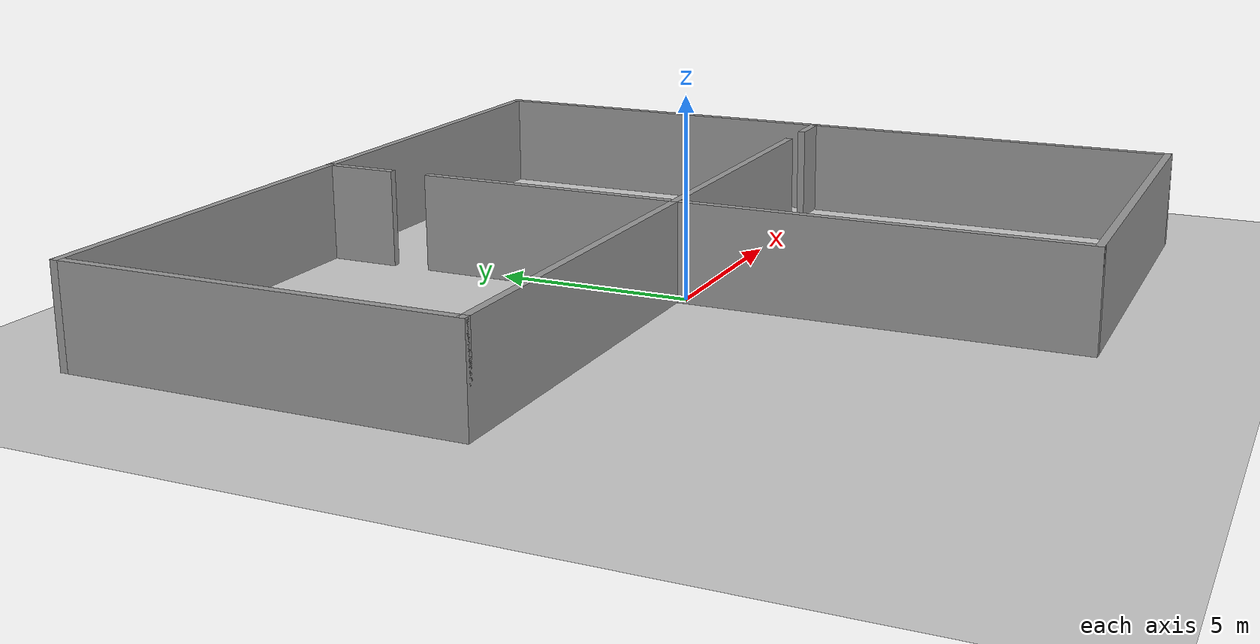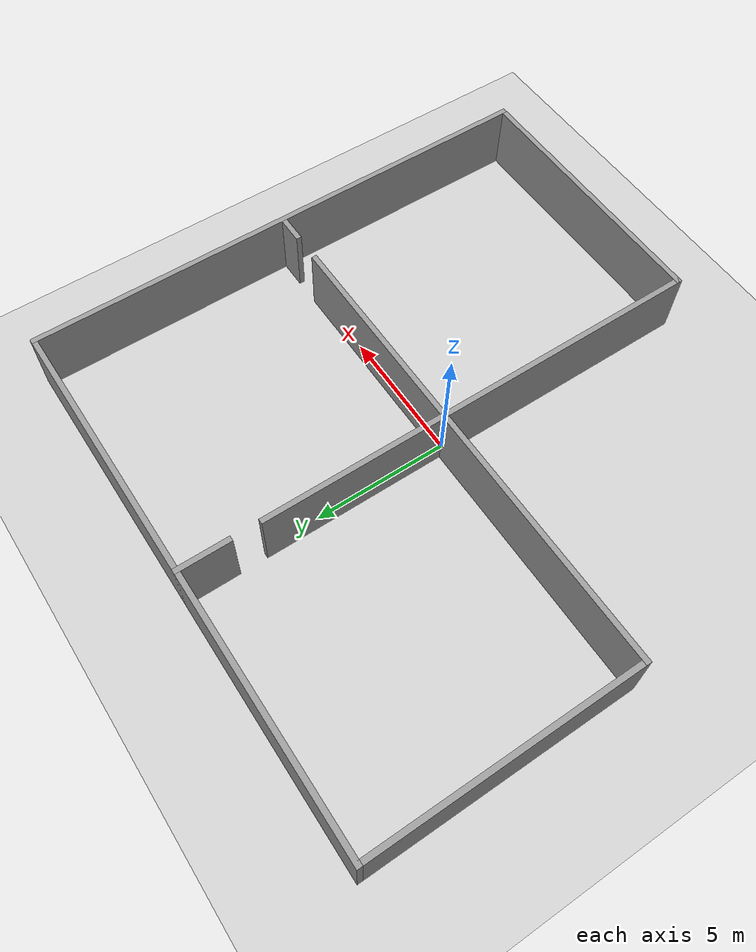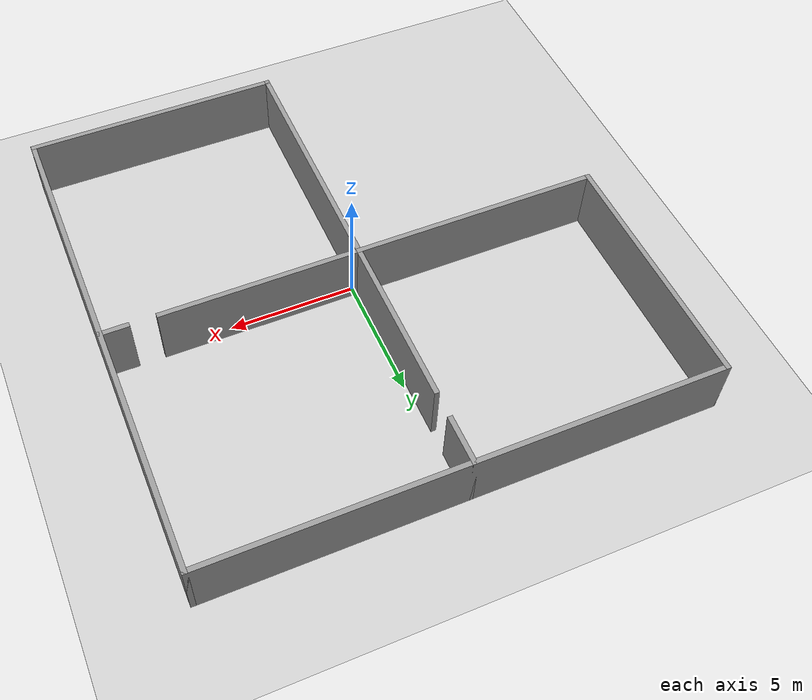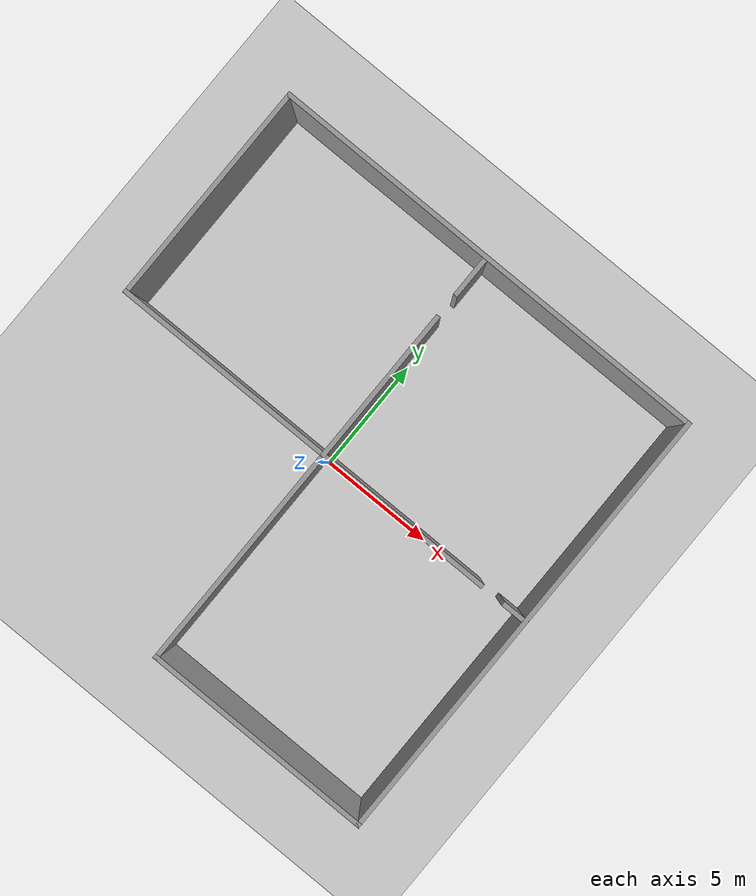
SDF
<sdf version="1.4">
 <world name="default">
  <light name="sun" type="directional">
   <pose>0 0 10 0 -0 0</pose>
   <diffuse>0.8 0.8 0.8 1</diffuse>
   <specular>0.2 0.2 0.2 1</specular>
   <attenuation>
    <range>1000</range>
    <constant>0.9</constant>
    <linear>0.01</linear>
    <quadratic>0.001</quadratic>
   </attenuation>
   <direction>-0.5 0.1 -0.9</direction>
  </light>
  <model name="ground_plane">
   <static>1</static>
   <link name="link">
    <collision name="collision">
     <geometry><plane><normal>0 0 1</normal><size>100 100</size></plane></geometry>
     <surface><friction><ode><mu>100</mu><mu2>50</mu2></ode></friction></surface>
    </collision>
    <visual name="visual">
     <cast_shadows>0</cast_shadows>
     <geometry><plane><normal>0 0 1</normal><size>100 100</size></plane></geometry>
     <material>
      <script><uri>file://media/materials/scripts/gazebo.material</uri><name>Gazebo/Grey</name></script>
     </material>
    </visual>
    <velocity_decay><linear>0</linear><angular>0</angular></velocity_decay>
   </link>
  </model>
  <physics type="ode">
   <max_step_size>0.001</max_step_size>
   <real_time_factor>1</real_time_factor>
   <real_time_update_rate>1000</real_time_update_rate>
   <gravity>0 0 -9.8</gravity>
  </physics>
  <scene><ambient>0.4 0.4 0.4 1</ambient><background>0.7 0.7 0.7 1</background><shadows>1</shadows></scene>
  <spherical_coordinates>
   <surface_model>EARTH_WGS84</surface_model>
   <latitude_deg>0</latitude_deg>
   <longitude_deg>0</longitude_deg>
   <elevation>0</elevation>
   <heading_deg>0</heading_deg>
  </spherical_coordinates>
  <model name="lshape">
   <link name="Wall_0">
    <collision name="Wall_0_Collision">
     <geometry><box><size>20 0.2 2.5</size></box></geometry>
     <pose>0 0 1.25 0 -0 0</pose>
    </collision>
    <visual name="Wall_0_Visual">
     <pose>0 0 1.25 0 -0 0</pose>
     <geometry><box><size>20 0.2 2.5</size></box></geometry>
     <material>
      <script><uri>file://media/materials/scripts/gazebo.material</uri><name>Gazebo/Grey</name></script>
     </material>
    </visual>
    <velocity_decay><linear>0</linear><angular>0</angular></velocity_decay>
    <pose>-0.1 10 0 0 -0 0</pose>
   </link>
   <link name="Wall_10">
    <collision name="Wall_10_Collision">
     <geometry><box><size>10.2 0.2 2.5</size></box></geometry>
     <pose>0 0 1.25 0 -0 0</pose>
    </collision>
    <visual name="Wall_10_Visual">
     <pose>0 0 1.25 0 -0 0</pose>
     <geometry><box><size>10.2 0.2 2.5</size></box></geometry>
     <material>
      <script><uri>file://media/materials/scripts/gazebo.material</uri><name>Gazebo/Grey</name></script>
     </material>
    </visual>
    <velocity_decay><linear>0</linear><angular>0</angular></velocity_decay>
    <pose>4.8 -9.8 0 0 -0 0</pose>
   </link>
   <link name="Wall_12">
    <collision name="Wall_12_Collision">
     <geometry><box><size>7 0.2 2.5</size></box></geometry>
     <pose>0 0 1.25 0 -0 0</pose>
    </collision>
    <visual name="Wall_12_Visual">
     <pose>0 0 1.25 0 -0 0</pose>
     <geometry><box><size>7 0.2 2.5</size></box></geometry>
     <material>
      <script><uri>file://media/materials/scripts/gazebo.material</uri><name>Gazebo/Grey</name></script>
     </material>
    </visual>
    <velocity_decay><linear>0</linear><angular>0</angular></velocity_decay>
    <pose>-0.2 3.6 0 0 -0 1.5708</pose>
   </link>
   <link name="Wall_14">
    <collision name="Wall_14_Collision">
     <geometry><box><size>2 0.2 2.5</size></box></geometry>
     <pose>0 0 1.25 0 -0 0</pose>
    </collision>
    <visual name="Wall_14_Visual">
     <pose>0 0 1.25 0 -0 0</pose>
     <geometry><box><size>2 0.2 2.5</size></box></geometry>
     <material>
      <script><uri>file://media/materials/scripts/gazebo.material</uri><name>Gazebo/Grey</name></script>
     </material>
    </visual>
    <velocity_decay><linear>0</linear><angular>0</angular></velocity_decay>
    <pose>-0.2 9.1 0 0 0 -1.5708</pose>
   </link>
   <link name="Wall_16">
    <collision name="Wall_16_Collision">
     <geometry><box><size>8 0.2 2.5</size></box></geometry>
     <pose>0 0 1.25 0 -0 0</pose>
    </collision>
    <visual name="Wall_16_Visual">
     <pose>0 0 1.25 0 -0 0</pose>
     <geometry><box><size>8 0.2 2.5</size></box></geometry>
     <material>
      <script><uri>file://media/materials/scripts/gazebo.material</uri><name>Gazebo/Grey</name></script>
     </material>
    </visual>
    <velocity_decay><linear>0</linear><angular>0</angular></velocity_decay>
    <pose>3.7 0.2 0 0 -0 0</pose>
   </link>
   <link name="Wall_18">
    <collision name="Wall_18_Collision">
     <geometry><box><size>1.2 0.2 2.5</size></box></geometry>
     <pose>0 0 1.25 0 -0 0</pose>
    </collision>
    <visual name="Wall_18_Visual">
     <pose>0 0 1.25 0 -0 0</pose>
     <geometry><box><size>1.2 0.2 2.5</size></box></geometry>
     <material>
      <script><uri>file://media/materials/scripts/gazebo.material</uri><name>Gazebo/Grey</name></script>
     </material>
    </visual>
    <velocity_decay><linear>0</linear><angular>0</angular></velocity_decay>
    <pose>9.3 0.2 0 0 -0 0</pose>
   </link>
   <link name="Wall_2">
    <collision name="Wall_2_Collision">
     <geometry><box><size>20 0.2 2.5</size></box></geometry>
     <pose>0 0 1.25 0 -0 0</pose>
    </collision>
    <visual name="Wall_2_Visual">
     <pose>0 0 1.25 0 -0 0</pose>
     <geometry><box><size>20 0.2 2.5</size></box></geometry>
     <material>
      <script><uri>file://media/materials/scripts/gazebo.material</uri><name>Gazebo/Grey</name></script>
     </material>
    </visual>
    <velocity_decay><linear>0</linear><angular>0</angular></velocity_decay>
    <pose>9.8 0.1 0 0 0 -1.5708</pose>
   </link>
   <link name="Wall_4">
    <collision name="Wall_4_Collision">
     <geometry><box><size>10 0.2 2.5</size></box></geometry>
     <pose>0 0 1.25 0 -0 0</pose>
    </collision>
    <visual name="Wall_4_Visual">
     <pose>0 0 1.25 0 -0 0</pose>
     <geometry><box><size>10 0.2 2.5</size></box></geometry>
     <material>
      <script><uri>file://media/materials/scripts/gazebo.material</uri><name>Gazebo/Grey</name></script>
     </material>
    </visual>
    <velocity_decay><linear>0</linear><angular>0</angular></velocity_decay>
    <pose>-10 5.1 0 0 0 -1.5708</pose>
   </link>
   <link name="Wall_6">
    <collision name="Wall_6_Collision">
     <geometry><box><size>10 0.2 2.5</size></box></geometry>
     <pose>0 0 1.25 0 -0 0</pose>
    </collision>
    <visual name="Wall_6_Visual">
     <pose>0 0 1.25 0 -0 0</pose>
     <geometry><box><size>10 0.2 2.5</size></box></geometry>
     <material>
      <script><uri>file://media/materials/scripts/gazebo.material</uri><name>Gazebo/Grey</name></script>
     </material>
    </visual>
    <velocity_decay><linear>0</linear><angular>0</angular></velocity_decay>
    <pose>-5.1 0.2 0 0 -0 0</pose>
   </link>
   <link name="Wall_8">
    <collision name="Wall_8_Collision">
     <geometry><box><size>10.2 0.2 2.5</size></box></geometry>
     <pose>0 0 1.25 0 -0 0</pose>
    </collision>
    <visual name="Wall_8_Visual">
     <pose>0 0 1.25 0 -0 0</pose>
     <geometry><box><size>10.2 0.2 2.5</size></box></geometry>
     <material>
      <script><uri>file://media/materials/scripts/gazebo.material</uri><name>Gazebo/Grey</name></script>
     </material>
    </visual>
    <velocity_decay><linear>0</linear><angular>0</angular></velocity_decay>
    <pose>-0.2 -4.8 0 0 0 -1.5708</pose>
   </link>
   <static>1</static>
  </model>
 </world>
</sdf>
